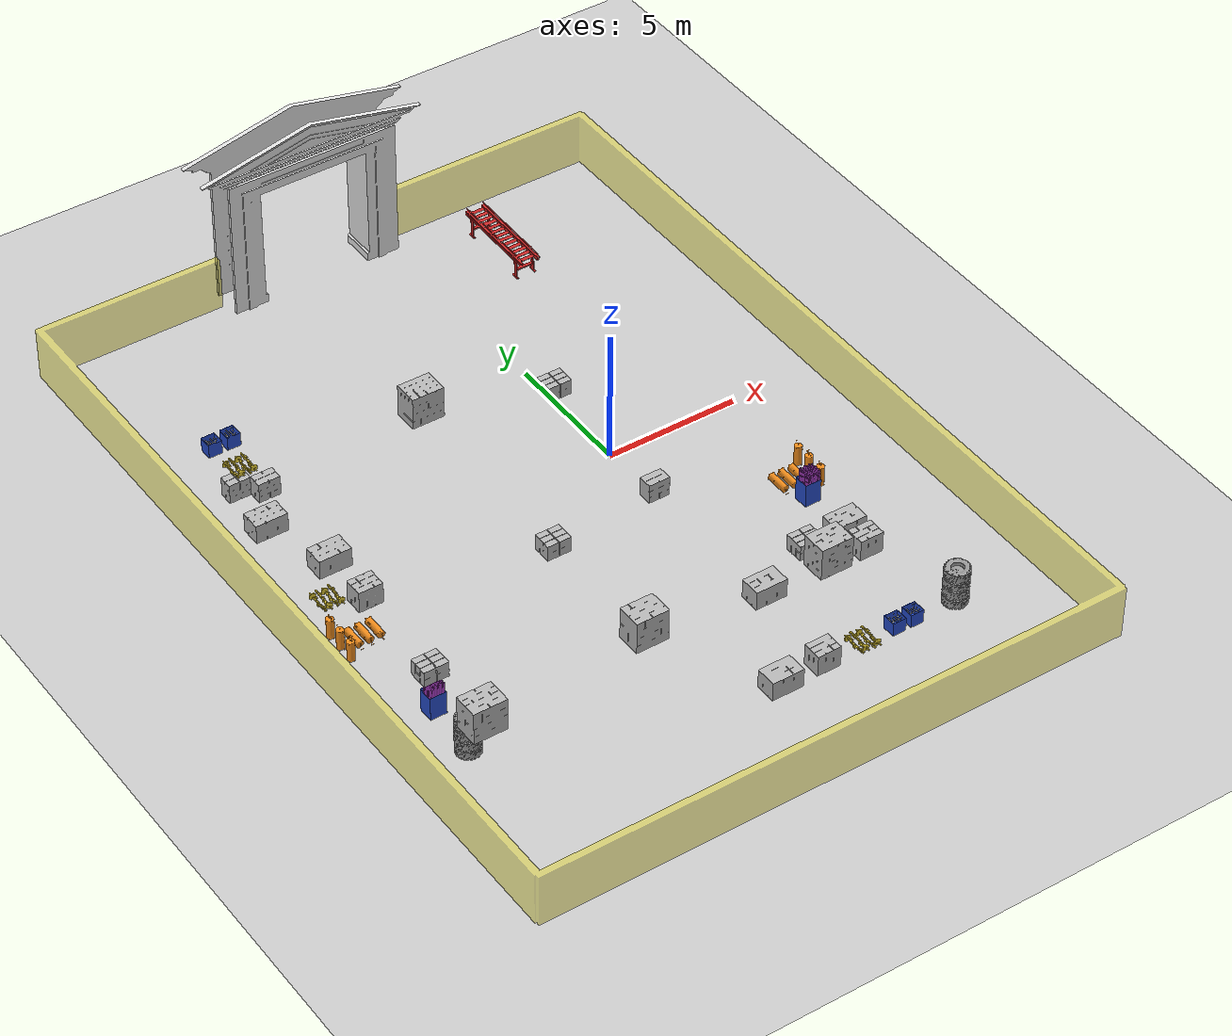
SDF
<sdf version="1.5">
 <world name="default">
  <include><uri>model://sun</uri></include>
  <include><uri>model://ground_plane</uri></include>
  <include><uri>model://tyre_stack</uri><pose>4.5 -12 0.15 0 0 0</pose></include>
  <include><name>pallet_13_up</name><uri>model://crankshafts</uri><pose>1.5 -12 0.15 0 0 0</pose></include>
  <include><name>pallet_15_2_up</name><uri>model://bin_2</uri><pose>3.28 -12 0.18 0 0 0</pose></include>
  <include><name>pallet_15_2_up_2</name><uri>model://bin_2</uri><pose>2.58 -12 0.18 0 0 0</pose></include>
  <include>
   <name>pallet_15_2_plumbing</name>
   <uri>model://plumbing_parts</uri>
   <pose>2.16 -12.05 0.5 0 0 0</pose>
  </include>
  <include>
   <name>pallet_15_2_plumbing_2</name>
   <uri>model://plumbing_parts</uri>
   <pose>1.46 -12.05 0.5 0 0 0</pose>
  </include>
  <include><name>pallet_7_up</name><uri>model://blue_box</uri><pose>-0.3 -11.9 0.15 0 0 1.57</pose></include>
  <include><name>pallet_8_up</name><uri>model://beer_1</uri><pose>-2.3 -12.1 0.15 0 0 0</pose></include>
  <include><name>pallet_7__2_up</name><uri>model://blue_box</uri><pose>4 -8.4 0.15 0 0 1.57</pose></include>
  <include><name>pallet_8_2_up</name><uri>model://beer_1</uri><pose>3.6 -7.5 0.15 0 0 0</pose></include>
  <include><name>pallet_6_up</name><uri>model://green_box</uri><pose>2.7 -7.7 0.15 0 0 0</pose></include>
  <include><name>pallet_5_up</name><uri>model://red_box</uri><pose>2.8 -8.8 0.15 0 0 0</pose></include>
  <include><name>pallet_11_up</name><uri>model://bin</uri><pose>4 -5.5 0.15 0 0 0</pose></include>
  <include><name>pallet_11_up_2</name><uri>model://pipes</uri><pose>4.3 -5.32 0.2 0 0 0</pose></include>
  <include>
   <name>pallet_12_up</name>
   <uri>model://cylender_stack</uri>
   <pose>3.58 -4.1 0.33 1.57 1.57 0</pose>
  </include>
  <include><name>pallet_12_up_2</name><uri>model://cylender_foot</uri><pose>4.9 -4.4 0 0 0 1.57</pose></include>
  <include><name>conveyor</name><uri>model://conveyor_belt</uri><pose>3 11 0 0 0 1.57</pose></include>
  <include><name>boundary</name><uri>model://boundary</uri><pose>-0.5 14 0 0 0 -1.57</pose></include>
  <include><name>door</name><uri>model://door</uri><pose>-3 14 0 0 0 1.57</pose></include>
  <include><name>pallet_8_3_up</name><uri>model://beer_1</uri><pose>-0.3 -8.5 0.15 0 0 0</pose></include>
  <include><name>pallet_9_up</name><uri>model://beer_2</uri><pose>-0.2 -2.7 0.15 0 0 0</pose></include>
  <include><name>pallet_6_2_up</name><uri>model://green_box</uri><pose>0.4 3.3 0.15 0 0 0</pose></include>
  <include><name>pallet_5_2_up</name><uri>model://red_box</uri><pose>-4 4.7 0.15 0 0 0</pose></include>
  <include><name>pallet_6_3_up</name><uri>model://green_box</uri><pose>-4 -3.2 0.15 0 0 0</pose></include>
  <include><name>pallet_5_3_up</name><uri>model://red_box</uri><pose>-4 -8.3 0.15 0 0 0</pose></include>
  <include><name>pallet_5_4_up</name><uri>model://red_box</uri><pose>-11.2 -10.1 1.65 0 0 0</pose></include>
  <include><name>pallet_6_4_up</name><uri>model://green_box</uri><pose>-11.2 -7.2 1.65 0 0 0</pose></include>
  <include><name>pallet_10_2_up</name><uri>model://tyre_stack</uri><pose>-11.9 -9 0.13 0 0 0</pose></include>
  <include><name>pallet_11_2_up</name><uri>model://bin</uri><pose>-11.4 -7 0.15 0 0 0</pose></include>
  <include><name>pallet_11_2_up_2</name><uri>model://pipes</uri><pose>-11.1 -6.8 0.2 0 0 0</pose></include>
  <include>
   <name>pallet_7__3_up</name>
   <uri>model://blue_box</uri>
   <pose>-11.38 -2.9 1.65 0 0 1.57</pose>
  </include>
  <include><name>pallet_8_4_up</name><uri>model://beer_1</uri><pose>-11.78 -1 1.65 0 0 0</pose></include>
  <include>
   <name>pallet_12_2_up</name>
   <uri>model://cylender_stack</uri>
   <pose>-11.8 -2.6 0.33 1.57 1.57 0</pose>
  </include>
  <include>
   <name>pallet_12_2_up_2</name>
   <uri>model://cylender_foot</uri>
   <pose>-12.2 -2.9 0 0 0 1.57</pose>
  </include>
  <include><name>pallet_13_3_up</name><uri>model://crankshafts</uri><pose>-11.4 -1 0.15 0 0 0</pose></include>
  <include><name>pallet_8_5_up</name><uri>model://beer_1</uri><pose>-11.78 3 0.15 0 0 0</pose></include>
  <include><name>pallet_9_2_up</name><uri>model://beer_2</uri><pose>-11.5 4.9 0.15 0 0 0</pose></include>
  <include><name>pallet_9_3_up</name><uri>model://beer_2</uri><pose>-11.5 2.9 1.65 0 0 0</pose></include>
  <include><name>pallet_13_3_up</name><uri>model://crankshafts</uri><pose>-11.25 4.5 1.65 0 0 0</pose></include>
  <include><name>pallet_15_up</name><uri>model://bin_2</uri><pose>-11.0 5.8 1.68 0 0 0</pose></include>
  <include><name>pallet_15_up_2</name><uri>model://bin_2</uri><pose>-11.7 5.8 1.68 0 0 0</pose></include>
  <include>
   <name>pallet_15_plumbing</name>
   <uri>model://plumbing_parts</uri>
   <pose>-12.12 5.75 2 0 0 0</pose>
  </include>
  <include>
   <name>pallet_15_plumbing_2</name>
   <uri>model://plumbing_parts</uri>
   <pose>-12.82 5.75 2 0 0 0</pose>
  </include>
 </world>
</sdf>

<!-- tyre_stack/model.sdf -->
<sdf version="1.5">
  <model name="tyre_stack">

    <pose>0 0 0  0 0 0</pose>

    <static>true</static>
    <link name="link">
      <inertial>
        <mass>97.976</mass>
        <inertia>
          <ixx>1</ixx>
          <ixy>0</ixy>
          <ixz>0</ixz>
          <iyy>1</iyy>
          <iyz>0</iyz>
          <izz>1</izz>
        </inertia>
      </inertial>

      <collision name="collision">
	    <pose>0 0 .1  0 0 0</pose>
        <geometry>
          <box>
            <size>.2 .2 .2</size>
          </box>
        </geometry>
      </collision>

      <visual name="visual">
        <geometry>
          <mesh>
            <uri>model://tyre_stack/meshes/tyre_stack.stl</uri>
          </mesh>
        </geometry>
        <material>
           <script>
  <name>Gazebo/Grey</name>
  </script>
        </material>
      </visual>
    </link>
  </model>
</sdf>

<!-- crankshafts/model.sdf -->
<sdf version="1.5">
  <model name="crankshafts">

    <pose>0 0 0  0 0 0</pose>

    <static>true</static>
    <link name="link">
      <inertial>
        <mass>54.4311</mass>
        <inertia>
          <ixx>1</ixx>
          <ixy>0</ixy>
          <ixz>0</ixz>
          <iyy>1</iyy>
          <iyz>0</iyz>
          <izz>1</izz>
        </inertia>
      </inertial>

      <collision name="collision">
	    <pose>0 0 0  0 0 0</pose>
        <geometry>
          <mesh>
            <uri>model://crankshafts/meshes/Crankshafts.stl</uri>
          </mesh>
        </geometry>
      </collision>

      <visual name="visual">
        <geometry>
          <mesh>
            <uri>model://crankshafts/meshes/Crankshafts.stl</uri>
          </mesh>
        </geometry>
        <material>
           <script>
  <name>Gazebo/ZincYellow</name>
  </script>
        </material>
      </visual>
    </link>
  </model>
</sdf>

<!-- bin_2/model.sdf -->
<sdf version="1.5">
  <model name="bin_2">

    <pose>0 0 0  0 0 0</pose>

    <static>true</static>
    <link name="link">
      <inertial>
        <mass>54.4311</mass>
        <inertia>
          <ixx>1</ixx>
          <ixy>0</ixy>
          <ixz>0</ixz>
          <iyy>1</iyy>
          <iyz>0</iyz>
          <izz>1</izz>
        </inertia>
      </inertial>

      <collision name="collision">
	    <pose>0 0 0  0 0 0</pose>
        <geometry>
          <mesh>
            <uri>model://bin_2/meshes/bin_2.stl</uri>
          </mesh>
        </geometry>
      </collision>

      <visual name="visual">
        <geometry>
          <mesh>
            <uri>model://bin_2/meshes/bin_2.stl</uri>
          </mesh>
        </geometry>
        <material>
           <script>
  <name>Gazebo/Blue</name>
  </script>
        </material>
      </visual>
    </link>
  </model>
</sdf>

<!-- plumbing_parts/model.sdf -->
<sdf version="1.5">
  <model name="plumbing_parts">

    <pose>0 0 0  0 0 0</pose>

    <static>true</static>
    <link name="link">
      <inertial>
        <mass>54.4311</mass>
        <inertia>
          <ixx>1</ixx>
          <ixy>0</ixy>
          <ixz>0</ixz>
          <iyy>1</iyy>
          <iyz>0</iyz>
          <izz>1</izz>
        </inertia>
      </inertial>

      <collision name="collision">
	    <pose>0 0 0  0 0 0</pose>
        <geometry>
          <mesh>
            <uri>model://plumbing_parts/meshes/plumbing_parts.stl</uri>
          </mesh>
        </geometry>
      </collision>

      <visual name="visual">
        <geometry>
          <mesh>
            <uri>model://plumbing_parts/meshes/plumbing_parts.stl</uri>
          </mesh>
        </geometry>
        <material>
           <script>
  <name>Gazebo/White</name>
  </script>
        </material>
      </visual>
    </link>
  </model>
</sdf>

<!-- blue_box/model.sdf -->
<sdf version="1.5">
  <model name="blue_box">

    <pose>0 0 0  0 0 0</pose>

    <static>true</static>
    <link name="link">
      <inertial>
        <mass>269.434</mass>
        <inertia>
          <ixx>1</ixx>
          <ixy>0</ixy>
          <ixz>0</ixz>
          <iyy>1</iyy>
          <iyz>0</iyz>
          <izz>1</izz>
        </inertia>
      </inertial>

      <collision name="collision">
	    <pose>0 0 0.32  0 0 0</pose>
        <geometry>
          <box>
            <size>.6 .6 0.6</size>
          </box>
        </geometry>
      </collision>

      <visual name="visual">
        <geometry>
          <mesh>
            <uri>model://blue_box/meshes/blue_stack.dae</uri>
          </mesh>
        </geometry>
      </visual>
    </link>
  </model>
</sdf>

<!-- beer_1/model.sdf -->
<sdf version="1.5">
  <model name="beer_1">

    <pose>0 0 0  0 0 0</pose>

    <static>true</static>
    <link name="link">
      <inertial>
        <mass>244.94</mass>
        <inertia>
          <ixx>1</ixx>
          <ixy>0</ixy>
          <ixz>0</ixz>
          <iyy>1</iyy>
          <iyz>0</iyz>
          <izz>1</izz>
        </inertia>
      </inertial>

      <collision name="collision">
	    <pose>0 0 0  0 0 0</pose>
        <geometry>
          <mesh>
            <uri>model://beer_1/meshes/beer_1_stack.dae</uri>
          </mesh>
        </geometry>
      </collision>

      <visual name="visual">
        <geometry>
          <mesh>
            <uri>model://beer_1/meshes/beer_1_stack.dae</uri>
          </mesh>
        </geometry>
      </visual>
    </link>
  </model>
</sdf>

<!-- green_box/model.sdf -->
<sdf version="1.5">
  <model name="green_box">

    <pose>0 0 0  0 0 0</pose>

    <static>true</static>
    <link name="link">
      <inertial>
        <mass>97.976</mass>
        <inertia>
          <ixx>1</ixx>
          <ixy>0</ixy>
          <ixz>0</ixz>
          <iyy>1</iyy>
          <iyz>0</iyz>
          <izz>1</izz>
        </inertia>
      </inertial>

      <collision name="collision">
	    <pose>0 0 0  0 0 0</pose>
        <geometry>
          <mesh>
            <uri>model://green_box/meshes/green_stack.dae</uri>
          </mesh>
        </geometry>
      </collision>

      <visual name="visual">
        <geometry>
          <mesh>
            <uri>model://green_box/meshes/green_stack.dae</uri>
          </mesh>
        </geometry>
      </visual>
    </link>
  </model>
</sdf>

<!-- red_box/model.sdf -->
<sdf version="1.5">
  <model name="red_box">

    <pose>0 0 0  0 0 0</pose>

    <static>true</static>
    <link name="link">
      <inertial>
        <mass>783.8076</mass>
        <inertia>
          <ixx>1</ixx>
          <ixy>0</ixy>
          <ixz>0</ixz>
          <iyy>1</iyy>
          <iyz>0</iyz>
          <izz>1</izz>
        </inertia>
      </inertial>

      <collision name="collision">
	    <pose>0 0 0  0 0 0</pose>
        <geometry>
          <mesh>
            <uri>model://red_box/meshes/red_box_stack.dae</uri>
          </mesh>
        </geometry>
      </collision>

      <visual name="visual">
        <geometry>
          <mesh>
            <uri>model://red_box/meshes/red_box_stack.dae</uri>
          </mesh>
        </geometry>
      </visual>
    </link>
  </model>
</sdf>

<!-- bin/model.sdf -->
<sdf version="1.5">
  <model name="bin">

    <pose>0 0 0  0 0 0</pose>

    <static>true</static>
    <link name="link">
      <inertial>
        <mass>97.976</mass>
        <inertia>
          <ixx>1</ixx>
          <ixy>0</ixy>
          <ixz>0</ixz>
          <iyy>1</iyy>
          <iyz>0</iyz>
          <izz>1</izz>
        </inertia>
      </inertial>

      <collision name="collision">
	    <pose>0 0 0  0 0 0</pose>
        <geometry>
          <mesh>
            <uri>model://bin/meshes/bin.stl</uri>
          </mesh>
        </geometry>
      </collision>

      <visual name="visual">
        <geometry>
          <mesh>
            <uri>model://bin/meshes/bin.stl</uri>
          </mesh>
        </geometry>
        <material>
           <script>
  <name>Gazebo/Blue</name>
  </script>
        </material>
      </visual>
    </link>
  </model>
</sdf>

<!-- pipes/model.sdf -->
<sdf version="1.5">
  <model name="pipes">

    <pose>0 0 0  0 0 0</pose>

    <static>true</static>
    <link name="link">
      <inertial>
        <mass>97.976</mass>
        <inertia>
          <ixx>1</ixx>
          <ixy>0</ixy>
          <ixz>0</ixz>
          <iyy>1</iyy>
          <iyz>0</iyz>
          <izz>1</izz>
        </inertia>
      </inertial>

      <collision name="collision">
	    <pose>0 0 0  0 0 0</pose>
        <geometry>
          <mesh>
            <uri>model://pipes/meshes/pipes.stl</uri>
          </mesh>
        </geometry>
      </collision>

      <visual name="visual">
        <geometry>
          <mesh>
            <uri>model://pipes/meshes/pipes.stl</uri>
          </mesh>
        </geometry>
        <material>
           <script>
  <name>Gazebo/Purple</name>
  </script>
        </material>
      </visual>
    </link>
  </model>
</sdf>

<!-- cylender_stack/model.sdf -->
<sdf version="1.5">
  <model name="cylender_stack">

    <pose>0 0 0  0 0 0</pose>

    <static>true</static>
    <link name="link">
      <inertial>
        <mass>54.4311</mass>
        <inertia>
          <ixx>1</ixx>
          <ixy>0</ixy>
          <ixz>0</ixz>
          <iyy>1</iyy>
          <iyz>0</iyz>
          <izz>1</izz>
        </inertia>
      </inertial>

      <collision name="collision">
	    <pose>0 0 0  0 0 0</pose>
        <geometry>
          <mesh>
            <uri>model://cylender_stack/meshes/cylender_stack.stl</uri>
          </mesh>
        </geometry>
      </collision>

      <visual name="visual">
        <geometry>
          <mesh>
            <uri>model://cylender_stack/meshes/cylender_stack.stl</uri>
          </mesh>
        </geometry>
        <material>
           <script>
  <name>Gazebo/Orange</name>
  </script>
        </material>
      </visual>
    </link>
  </model>
</sdf>

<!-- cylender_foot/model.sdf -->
<sdf version="1.5">
  <model name="cylender_foot">

    <pose>0 0 0  0 0 0</pose>

    <static>true</static>
    <link name="link">
      <inertial>
        <mass>54.4311</mass>
        <inertia>
          <ixx>1</ixx>
          <ixy>0</ixy>
          <ixz>0</ixz>
          <iyy>1</iyy>
          <iyz>0</iyz>
          <izz>1</izz>
        </inertia>
      </inertial>

      <collision name="collision">
	    <pose>0 0 0  0 0 0</pose>
        <geometry>
          <mesh>
            <uri>model://cylender_foot/meshes/foot_apart.stl</uri>
          </mesh>
        </geometry>
      </collision>

      <visual name="visual">
        <geometry>
          <mesh>
            <uri>model://cylender_foot/meshes/foot_apart.stl</uri>
          </mesh>
        </geometry>
        <material>
           <script>
  <name>Gazebo/Orange</name>
  </script>
        </material>
      </visual>
    </link>
  </model>
</sdf>

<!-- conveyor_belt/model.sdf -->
<sdf version="1.5">
  <model name="conveyor_belt">

    <pose>0 0 0  0 0 0</pose>

    <static>false</static>
    <link name="link">
      <inertial>
        <mass>25.0</mass>
        <inertia>
          <ixx>1</ixx>
          <ixy>0</ixy>
          <ixz>0</ixz>
          <iyy>1</iyy>
          <iyz>0</iyz>
          <izz>1</izz>
        </inertia>
      </inertial>

      <collision name="collision">
	    <pose>0 0 0  0 0 0</pose>
        <geometry>
          <mesh>
            <uri>model://conveyor_belt/meshes/conveyor.stl</uri>
          </mesh>
        </geometry>
      </collision>

      <visual name="visual">
        <geometry>
          <mesh>
            <uri>model://conveyor_belt/meshes/conveyor.stl</uri>
          </mesh>
        </geometry>
        <material>
           <script>
  <name>Gazebo/RedBright</name>
  </script>
        </material>
      </visual>
    </link>
  </model>
</sdf>

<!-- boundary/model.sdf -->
<sdf version="1.5">
  <model name="boundary">

    <pose>0 0 0  0 0 0</pose>

    <static>true</static>
    <link name="link">
      <inertial>
        <mass>54.4311</mass>
        <inertia>
          <ixx>1</ixx>
          <ixy>0</ixy>
          <ixz>0</ixz>
          <iyy>1</iyy>
          <iyz>0</iyz>
          <izz>1</izz>
        </inertia>
      </inertial>

      <collision name="collision">
	    <pose>0 0 0  0 0 0</pose>
        <geometry>
          <mesh>
            <uri>model://boundary/meshes/wall.stl</uri>
          </mesh>
        </geometry>
      </collision>

      <visual name="visual">
        <geometry>
          <mesh>
            <uri>model://boundary/meshes/wall.stl</uri>
          </mesh>
        </geometry>
        <material>
           <script>
  <name>Gazebo/YellowTransparent</name>
  </script>
        </material>
      </visual>
    </link>
  </model>
</sdf>

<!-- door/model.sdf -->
<sdf version="1.5">
  <model name="door">

    <pose>0 0 0  0 0 0</pose>

    <static>true</static>
    <link name="link">
      <inertial>
        <mass>97.976</mass>
        <inertia>
          <ixx>1</ixx>
          <ixy>0</ixy>
          <ixz>0</ixz>
          <iyy>1</iyy>
          <iyz>0</iyz>
          <izz>1</izz>
        </inertia>
      </inertial>

      <collision name="collision">
	    <pose>0 0 0  0 0 0</pose>
        <geometry>
          <mesh>
            <uri>model://door/meshes/door.stl</uri>
          </mesh>
        </geometry>
      </collision>

      <visual name="visual">
        <geometry>
          <mesh>
            <uri>model://door/meshes/door.stl</uri>
          </mesh>
        </geometry>
        <material>
           <script>
  <name>Gazebo/White</name>
  </script>
        </material>
      </visual>
    </link>
  </model>
</sdf>

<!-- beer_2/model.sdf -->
<sdf version="1.5">
  <model name="beer_2">

    <pose>0 0 0  0 0 0</pose>

    <static>true</static>
    <link name="link">
      <inertial>
        <mass>97.976</mass>
        <inertia>
          <ixx>1</ixx>
          <ixy>0</ixy>
          <ixz>0</ixz>
          <iyy>1</iyy>
          <iyz>0</iyz>
          <izz>1</izz>
        </inertia>
      </inertial>

      <collision name="collision">
	    <pose>0 0 0  0 0 0</pose>
        <geometry>
          <mesh>
            <uri>model://beer_2/meshes/beer_2_stack.dae</uri>
          </mesh>
        </geometry>
      </collision>

      <visual name="visual">
        <geometry>
          <mesh>
            <uri>model://beer_2/meshes/beer_2_stack.dae</uri>
          </mesh>
        </geometry>
      </visual>
    </link>
  </model>
</sdf>
